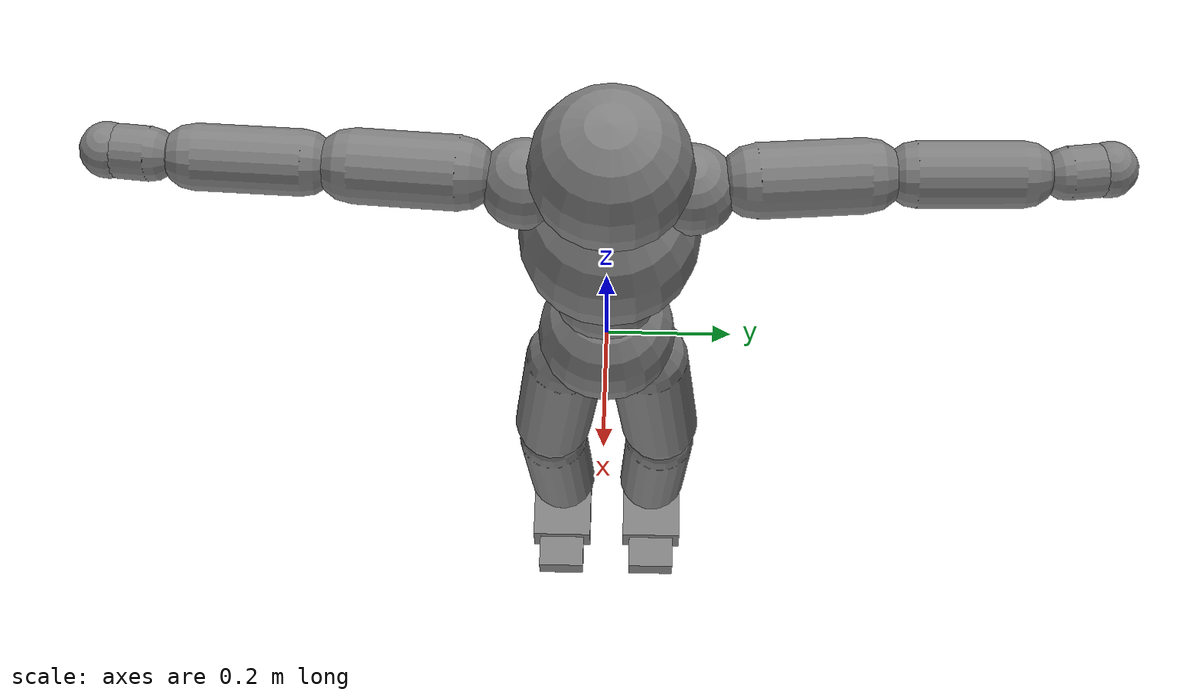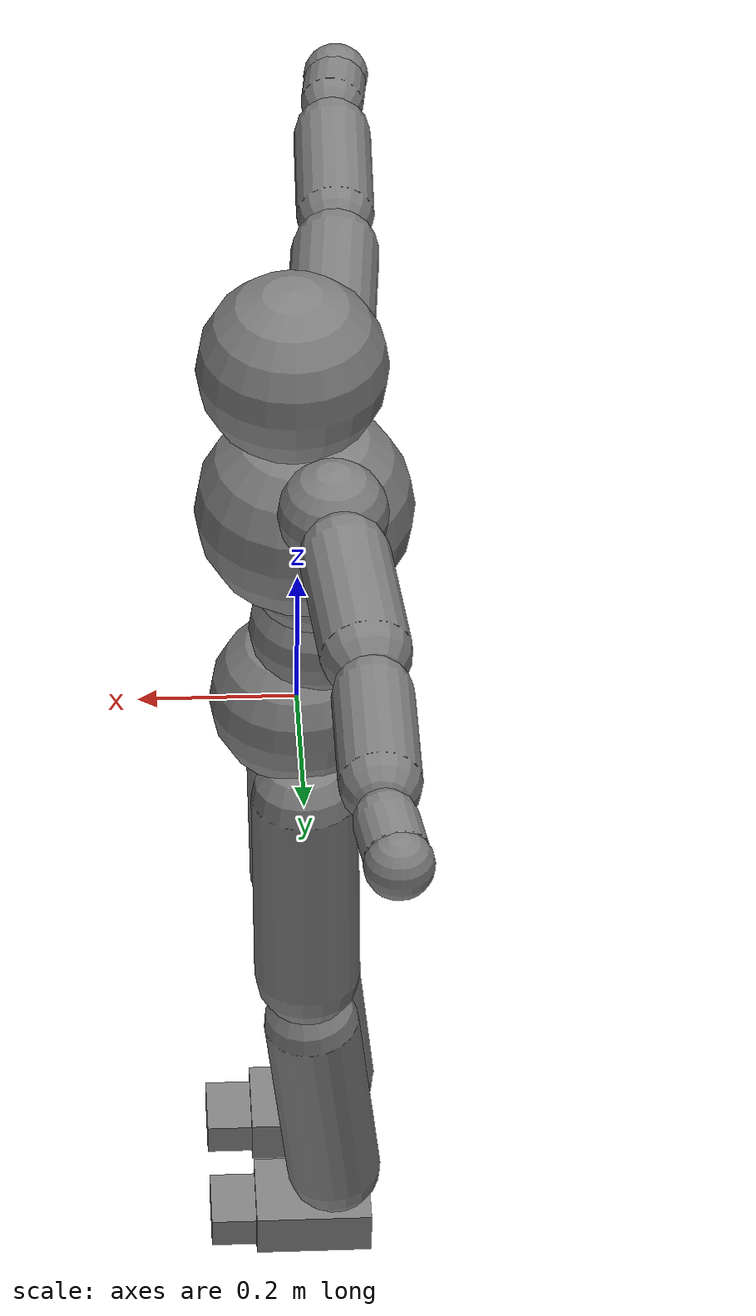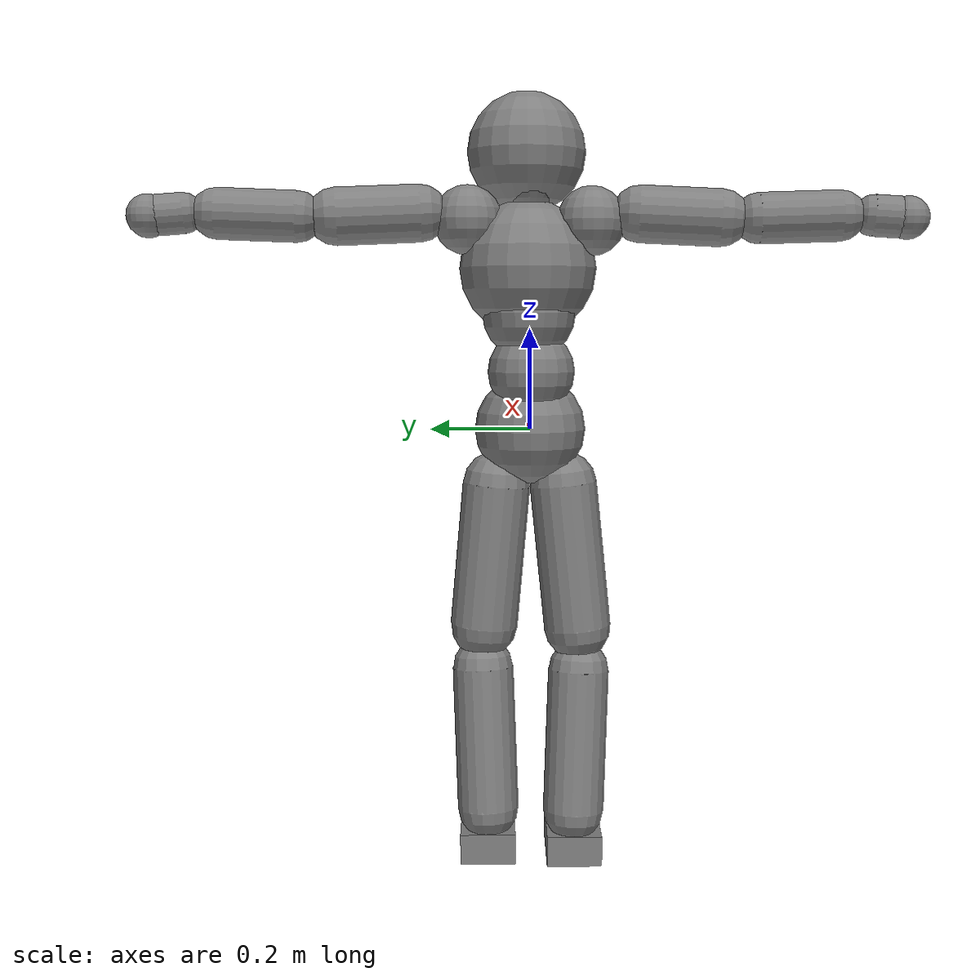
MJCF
<mujoco model="smpl">
  <compiler angle="radian" />
  <default>
    <motor ctrlrange="-1 1" ctrllimited="true" />
    <geom condim="1" friction="1.0 0.05 0.05" solimp=".9 .99 .003" solref=".015 1" />
    <joint limited="true" solimplimit="0 .99 .01" />
    <site size=".04" group="3" />
    <default class="force-torque">
      <site type="box" size=".01 .01 .02" rgba="1 0 0 1" />
    </default>
    <default class="touch">
      <site type="capsule" rgba="0 0 1 .3" />
    </default>
  </default>
  <worldbody>
    <body name="Pelvis" pos="0.000000 0.000000 0.000000">
      <freejoint name="Pelvis" />
      <geom type="sphere" contype="1" conaffinity="1" density="1061.766755" size="0.111150" pos="0.000000 0.000000 0.000000" />
      <body name="L_Hip" pos="-0.006460 0.066025 -0.086830">
        <joint name="L_Hip_x" type="hinge" pos="0 0 0" axis="1 0 0" actuatorfrcrange="-300 300" stiffness="500" damping="50" armature="0.02" range="-0.5236 1.5708" />
        <joint name="L_Hip_y" type="hinge" pos="0 0 0" axis="0 1 0" actuatorfrcrange="-300 300" stiffness="500" damping="50" armature="0.02" range="-2.4435 1.0472" />
        <joint name="L_Hip_z" type="hinge" pos="0 0 0" axis="0 0 1" actuatorfrcrange="-300 300" stiffness="500" damping="50" armature="0.02" range="-0.6109 1.0472" />
        <geom type="capsule" contype="1" conaffinity="1" density="978.361309" fromto="-0.000299 0.002281 -0.024951 -0.003762 0.028675 -0.313667" size="0.067925" />
        <body name="L_Knee" pos="-0.004275 0.032585 -0.356440">
          <joint name="L_Knee_x" type="hinge" pos="0 0 0" axis="1 0 0" actuatorfrcrange="-200 200" stiffness="500" damping="50" armature="0.02" range="-0.5236 0.5236" />
          <joint name="L_Knee_y" type="hinge" pos="0 0 0" axis="0 1 0" actuatorfrcrange="-200 200" stiffness="500" damping="50" armature="0.02" range="0 2.7925" />
          <joint name="L_Knee_z" type="hinge" pos="0 0 0" axis="0 0 1" actuatorfrcrange="-200 200" stiffness="500" damping="50" armature="0.02" range="-0.5236 0.5236" />
          <geom type="capsule" contype="1" conaffinity="1" density="818.574149" fromto="-0.004982 -0.001550 -0.045372 -0.036533 -0.011370 -0.332728" size="0.061750" />
          <body name="L_Ankle" pos="-0.041515 -0.012920 -0.378100">
            <joint name="L_Ankle_x" type="hinge" pos="0 0 0" axis="1 0 0" actuatorfrcrange="-100 100" stiffness="400" damping="40" armature="0.02" range="-0.5236 0.5236" />
            <joint name="L_Ankle_y" type="hinge" pos="0 0 0" axis="0 1 0" actuatorfrcrange="-100 100" stiffness="400" damping="40" armature="0.02" range="-0.9599 0.9599" />
            <joint name="L_Ankle_z" type="hinge" pos="0 0 0" axis="0 0 1" actuatorfrcrange="-100 100" stiffness="400" damping="40" armature="0.02" range="-0.6981 0.6981" />
            <geom type="box" contype="1" conaffinity="1" density="690.148391" pos="0.032870 0.002280 -0.026505" size="0.076000 0.055575 0.030875" quat="1.0000 0.0000 0.0000 0.0000" />
            <body name="L_Toe" pos="0.113335 0.011780 -0.024510">
              <joint name="L_Toe_x" type="hinge" pos="0 0 0" axis="1 0 0" actuatorfrcrange="-75 75" stiffness="200" damping="20" armature="0.02" range="-0.5236 0.5236" />
              <joint name="L_Toe_y" type="hinge" pos="0 0 0" axis="0 1 0" actuatorfrcrange="-75 75" stiffness="200" damping="20" armature="0.02" range="-1.0472 1.0472" />
              <joint name="L_Toe_z" type="hinge" pos="0 0 0" axis="0 0 1" actuatorfrcrange="-75 75" stiffness="200" damping="20" armature="0.02" range="-0.5236 0.5236" />
              <geom type="box" contype="1" conaffinity="1" density="690.148391" pos="0.023940 -0.009500 -0.007600" size="0.030875 0.042750 0.022230" quat="1.0000 0.0000 0.0000 0.0000" />
            </body>
          </body>
        </body>
      </body>
      <body name="R_Hip" pos="-0.004085 -0.064315 -0.085975">
        <joint name="R_Hip_x" type="hinge" pos="0 0 0" axis="1 0 0" actuatorfrcrange="-300 300" stiffness="500" damping="50" armature="0.02" range="-1.5708 0.5236" />
        <joint name="R_Hip_y" type="hinge" pos="0 0 0" axis="0 1 0" actuatorfrcrange="-300 300" stiffness="500" damping="50" armature="0.02" range="-2.4435 1.0472" />
        <joint name="R_Hip_z" type="hinge" pos="0 0 0" axis="0 0 1" actuatorfrcrange="-300 300" stiffness="500" damping="50" armature="0.02" range="-1.0472 0.6109" />
        <geom type="capsule" contype="1" conaffinity="1" density="979.246956" fromto="-0.000592 -0.002547 -0.025443 -0.007440 -0.032019 -0.319854" size="0.067925" />
        <body name="R_Knee" pos="-0.008455 -0.036385 -0.363470">
          <joint name="R_Knee_x" type="hinge" pos="0 0 0" axis="1 0 0" actuatorfrcrange="-200 200" stiffness="500" damping="50" armature="0.02" range="-0.5236 0.5236" />
          <joint name="R_Knee_y" type="hinge" pos="0 0 0" axis="0 1 0" actuatorfrcrange="-200 200" stiffness="500" damping="50" armature="0.02" range="0 2.7925" />
          <joint name="R_Knee_z" type="hinge" pos="0 0 0" axis="0 0 1" actuatorfrcrange="-200 200" stiffness="500" damping="50" armature="0.02" range="-0.5236 0.5236" />
          <geom type="capsule" contype="1" conaffinity="1" density="818.602236" fromto="-0.004822 0.001801 -0.045418 -0.035363 0.013209 -0.333062" size="0.061750" />
          <body name="R_Ankle" pos="-0.040185 0.015010 -0.378480">
            <joint name="R_Ankle_x" type="hinge" pos="0 0 0" axis="1 0 0" actuatorfrcrange="-100 100" stiffness="400" damping="40" armature="0.02" range="-0.5236 0.5236" />
            <joint name="R_Ankle_y" type="hinge" pos="0 0 0" axis="0 1 0" actuatorfrcrange="-100 100" stiffness="400" damping="40" armature="0.02" range="-0.9599 0.9599" />
            <joint name="R_Ankle_z" type="hinge" pos="0 0 0" axis="0 0 1" actuatorfrcrange="-100 100" stiffness="400" damping="40" armature="0.02" range="-0.6981 0.6981" />
            <geom type="box" contype="1" conaffinity="1" density="690.148391" pos="0.032870 -0.002280 -0.026505" size="0.076000 0.055575 0.030875" quat="1.0000 0.0000 0.0000 0.0000" />
            <body name="R_Toe" pos="0.113335 -0.011780 -0.024510">
              <joint name="R_Toe_x" type="hinge" pos="0 0 0" axis="1 0 0" actuatorfrcrange="-75 75" stiffness="200" damping="20" armature="0.02" range="-0.5236 0.5236" />
              <joint name="R_Toe_y" type="hinge" pos="0 0 0" axis="0 1 0" actuatorfrcrange="-75 75" stiffness="200" damping="20" armature="0.02" range="-1.0472 1.0472" />
              <joint name="R_Toe_z" type="hinge" pos="0 0 0" axis="0 0 1" actuatorfrcrange="-75 75" stiffness="200" damping="20" armature="0.02" range="-0.5236 0.5236" />
              <geom type="box" contype="1" conaffinity="1" density="690.148391" pos="0.023940 0.009500 -0.007600" size="0.030875 0.042750 0.022230" quat="1.0000 0.0000 0.0000 0.0000" />
            </body>
          </body>
        </body>
      </body>
      <body name="Torso" pos="-0.025365 -0.002375 0.103550">
        <joint name="Torso_x" type="hinge" pos="0 0 0" axis="1 0 0" actuatorfrcrange="-300 300" stiffness="1000" damping="100" armature="0.02" range="-1.0472 1.0472" />
        <joint name="Torso_y" type="hinge" pos="0 0 0" axis="0 1 0" actuatorfrcrange="-300 300" stiffness="1000" damping="100" armature="0.02" range="-1.0472 1.5708" />
        <joint name="Torso_z" type="hinge" pos="0 0 0" axis="0 0 1" actuatorfrcrange="-300 300" stiffness="1000" damping="100" armature="0.02" range="-0.8727 0.8727" />
        <geom type="sphere" contype="1" conaffinity="1" density="1061.766755" size="0.086450" pos="0.000104 0.000522 0.012844" />
        <body name="Spine" pos="0.001045 0.005225 0.128440">
          <joint name="Spine_x" type="hinge" pos="0 0 0" axis="1 0 0" actuatorfrcrange="-200 200" stiffness="1000" damping="100" armature="0.02" range="-1.0472 1.0472" />
          <joint name="Spine_y" type="hinge" pos="0 0 0" axis="0 1 0" actuatorfrcrange="-200 200" stiffness="1000" damping="100" armature="0.02" range="-1.0472 1.5708" />
          <joint name="Spine_z" type="hinge" pos="0 0 0" axis="0 0 1" actuatorfrcrange="-200 200" stiffness="1000" damping="100" armature="0.02" range="-0.8727 0.8727" />
          <geom type="sphere" contype="1" conaffinity="1" density="1061.766755" size="0.092625" pos="0.000000 0.000000 0.000000" />
          <body name="Chest" pos="0.024130 0.001425 0.050255">
            <joint name="Chest_x" type="hinge" pos="0 0 0" axis="1 0 0" actuatorfrcrange="-150 150" stiffness="1000" damping="100" armature="0.02" range="-1.0472 1.0472" />
            <joint name="Chest_y" type="hinge" pos="0 0 0" axis="0 1 0" actuatorfrcrange="-150 150" stiffness="1000" damping="100" armature="0.02" range="-1.0472 1.5708" />
            <joint name="Chest_z" type="hinge" pos="0 0 0" axis="0 0 1" actuatorfrcrange="-150 150" stiffness="1000" damping="100" armature="0.02" range="-0.8727 0.8727" />
            <geom type="sphere" contype="1" conaffinity="1" density="1061.766755" size="0.135850" pos="-0.007600 0.000000 0.038000" />
            <body name="Neck" pos="-0.040755 -0.002660 0.203205">
              <joint name="Neck_x" type="hinge" pos="0 0 0" axis="1 0 0" actuatorfrcrange="-75 75" stiffness="500" damping="50" armature="0.02" range="-0.8727 0.8727" />
              <joint name="Neck_y" type="hinge" pos="0 0 0" axis="0 1 0" actuatorfrcrange="-75 75" stiffness="500" damping="50" armature="0.02" range="-0.6981 1.0472" />
              <joint name="Neck_z" type="hinge" pos="0 0 0" axis="0 0 1" actuatorfrcrange="-75 75" stiffness="500" damping="50" armature="0.02" range="-0.7854 0.7854" />
              <geom type="sphere" contype="1" conaffinity="1" density="530.883377" size="0.055575" pos="0.019000 0.000000 0.000000" />
              <body name="Head" pos="0.048735 0.004940 0.061750">
                <joint name="Head_x" type="hinge" pos="0 0 0" axis="1 0 0" actuatorfrcrange="-25 25" stiffness="200" damping="20" armature="0.02" range="-0.8727 0.8727" />
                <joint name="Head_y" type="hinge" pos="0 0 0" axis="0 1 0" actuatorfrcrange="-25 25" stiffness="200" damping="20" armature="0.02" range="-0.6981 1.0472" />
                <joint name="Head_z" type="hinge" pos="0 0 0" axis="0 0 1" actuatorfrcrange="-25 25" stiffness="200" damping="20" armature="0.02" range="-0.7854 0.7854" />
                <geom type="sphere" contype="1" conaffinity="1" density="530.883377" size="0.117325" pos="0.000000 0.000000 0.000000" />
              </body>
            </body>
            <body name="L_Thorax" pos="-0.032395 0.074860 0.115615">
              <joint name="L_Thorax_x" type="hinge" pos="0 0 0" axis="1 0 0" actuatorfrcrange="-200 200" stiffness="500" damping="50" armature="0.02" range="-0.6981 0.5236" />
              <joint name="L_Thorax_y" type="hinge" pos="0 0 0" axis="0 1 0" actuatorfrcrange="-200 200" stiffness="500" damping="50" armature="0.02" range="-0.5236 0.5236" />
              <joint name="L_Thorax_z" type="hinge" pos="0 0 0" axis="0 0 1" actuatorfrcrange="-200 200" stiffness="500" damping="50" armature="0.02" range="-0.5236 0.5236" />
              <geom type="sphere" contype="1" conaffinity="1" density="530.883377" size="0.067925" pos="-0.004227 0.043225 0.014487" />
              <body name="L_Shoulder" pos="-0.008455 0.086450 0.028975">
                <joint name="L_Shoulder_x" type="hinge" pos="0 0 0" axis="1 0 0" actuatorfrcrange="-150 150" stiffness="400" damping="40" armature="0.02" range="-2.3562 1.5708" />
                <joint name="L_Shoulder_y" type="hinge" pos="0 0 0" axis="0 1 0" actuatorfrcrange="-150 150" stiffness="400" damping="40" armature="0.02" range="-1.5708 1.5708" />
                <joint name="L_Shoulder_z" type="hinge" pos="0 0 0" axis="0 0 1" actuatorfrcrange="-150 150" stiffness="400" damping="40" armature="0.02" range="-2.7925 1.0472" />
                <geom type="capsule" contype="1" conaffinity="1" density="640.034339" fromto="-0.005225 0.049324 -0.002432 -0.022206 0.209627 -0.010336" size="0.055575" />
                <body name="L_Elbow" pos="-0.026125 0.246620 -0.012160">
                  <joint name="L_Elbow_x" type="hinge" pos="0 0 0" axis="1 0 0" actuatorfrcrange="-100 100" stiffness="300" damping="30" armature="0.02" range="-0.5236 0.5236" />
                  <joint name="L_Elbow_y" type="hinge" pos="0 0 0" axis="0 1 0" actuatorfrcrange="-100 100" stiffness="300" damping="30" armature="0.02" range="-0.5236 0.5236" />
                  <joint name="L_Elbow_z" type="hinge" pos="0 0 0" axis="0 0 1" actuatorfrcrange="-100 100" stiffness="300" damping="30" armature="0.02" range="-2.7925 0" />
                  <geom type="capsule" contype="1" conaffinity="1" density="642.441012" fromto="-0.000171 0.035511 0.001283 -0.000855 0.189430 0.006840" size="0.049400" />
                  <body name="L_Wrist" pos="-0.001140 0.236740 0.008550">
                    <joint name="L_Wrist_x" type="hinge" pos="0 0 0" axis="1 0 0" actuatorfrcrange="-75 75" stiffness="200" damping="20" armature="0.02" range="-1.5708 1.5708" />
                    <joint name="L_Wrist_y" type="hinge" pos="0 0 0" axis="0 1 0" actuatorfrcrange="-75 75" stiffness="200" damping="20" armature="0.02" range="-1.5708 1.5708" />
                    <joint name="L_Wrist_z" type="hinge" pos="0 0 0" axis="0 0 1" actuatorfrcrange="-75 75" stiffness="200" damping="20" armature="0.02" range="-1.0472 1.0472" />
                    <geom type="capsule" contype="1" conaffinity="1" density="607.759021" fromto="-0.002850 0.015960 -0.001520 -0.011400 0.063840 -0.006175" size="0.039273" />
                    <body name="L_Hand" pos="-0.014155 0.079800 -0.007790">
                      <joint name="L_Hand_x" type="hinge" pos="0 0 0" axis="1 0 0" actuatorfrcrange="-50 50" stiffness="100" damping="10" armature="0.02" range="-1.5708 1.5708" />
                      <joint name="L_Hand_y" type="hinge" pos="0 0 0" axis="0 1 0" actuatorfrcrange="-50 50" stiffness="100" damping="10" armature="0.02" range="-1.5708 1.5708" />
                      <joint name="L_Hand_z" type="hinge" pos="0 0 0" axis="0 0 1" actuatorfrcrange="-50 50" stiffness="100" damping="10" armature="0.02" range="-1.5708 1.5708" />
                      <geom type="sphere" contype="1" conaffinity="1" density="530.883377" size="0.041620" pos="0.000000 0.000000 0.000000" />
                    </body>
                  </body>
                </body>
              </body>
            </body>
            <body name="R_Thorax" pos="-0.036670 -0.077710 0.112860">
              <joint name="R_Thorax_x" type="hinge" pos="0 0 0" axis="1 0 0" actuatorfrcrange="-200 200" stiffness="500" damping="50" armature="0.02" range="-0.5236 0.6981" />
              <joint name="R_Thorax_y" type="hinge" pos="0 0 0" axis="0 1 0" actuatorfrcrange="-200 200" stiffness="500" damping="50" armature="0.02" range="-0.5236 0.5236" />
              <joint name="R_Thorax_z" type="hinge" pos="0 0 0" axis="0 0 1" actuatorfrcrange="-200 200" stiffness="500" damping="50" armature="0.02" range="-0.5236 0.5236" />
              <geom type="sphere" contype="1" conaffinity="1" density="530.883377" size="0.067925" pos="-0.004322 -0.045600 0.015485" />
              <body name="R_Shoulder" pos="-0.008645 -0.091200 0.030970">
                <joint name="R_Shoulder_x" type="hinge" pos="0 0 0" axis="1 0 0" actuatorfrcrange="-150 150" stiffness="400" damping="40" armature="0.02" range="-1.5708 2.3562" />
                <joint name="R_Shoulder_y" type="hinge" pos="0 0 0" axis="0 1 0" actuatorfrcrange="-150 150" stiffness="400" damping="40" armature="0.02" range="-1.5708 1.5708" />
                <joint name="R_Shoulder_z" type="hinge" pos="0 0 0" axis="0 0 1" actuatorfrcrange="-150 150" stiffness="400" damping="40" armature="0.02" range="-1.0472 2.7925" />
                <geom type="capsule" contype="1" conaffinity="1" density="639.176533" fromto="-0.004066 -0.048203 -0.002527 -0.017281 -0.204863 -0.010740" size="0.055575" />
                <body name="R_Elbow" pos="-0.020330 -0.241015 -0.012635">
                  <joint name="R_Elbow_x" type="hinge" pos="0 0 0" axis="1 0 0" actuatorfrcrange="-100 100" stiffness="300" damping="30" armature="0.02" range="-0.5236 0.5236" />
                  <joint name="R_Elbow_y" type="hinge" pos="0 0 0" axis="0 1 0" actuatorfrcrange="-100 100" stiffness="300" damping="30" armature="0.02" range="-0.5236 0.5236" />
                  <joint name="R_Elbow_z" type="hinge" pos="0 0 0" axis="0 0 1" actuatorfrcrange="-100 100" stiffness="300" damping="30" armature="0.02" range="0 2.7925" />
                  <geom type="capsule" contype="1" conaffinity="1" density="643.238545" fromto="-0.000798 -0.036380 0.001112 -0.004256 -0.194028 0.005928" size="0.049400" />
                  <body name="R_Wrist" pos="-0.005320 -0.242535 0.007410">
                    <joint name="R_Wrist_x" type="hinge" pos="0 0 0" axis="1 0 0" actuatorfrcrange="-75 75" stiffness="200" damping="20" armature="0.02" range="-1.5708 1.5708" />
                    <joint name="R_Wrist_y" type="hinge" pos="0 0 0" axis="0 1 0" actuatorfrcrange="-75 75" stiffness="200" damping="20" armature="0.02" range="-1.5708 1.5708" />
                    <joint name="R_Wrist_z" type="hinge" pos="0 0 0" axis="0 0 1" actuatorfrcrange="-75 75" stiffness="200" damping="20" armature="0.02" range="-1.0472 1.0472" />
                    <geom type="capsule" contype="1" conaffinity="1" density="606.678075" fromto="-0.001995 -0.016055 -0.001140 -0.007885 -0.064315 -0.004655" size="0.040261" />
                    <body name="R_Hand" pos="-0.009785 -0.080370 -0.005795">
                      <joint name="R_Hand_x" type="hinge" pos="0 0 0" axis="1 0 0" actuatorfrcrange="-50 50" stiffness="100" damping="10" armature="0.02" range="-1.5708 1.5708" />
                      <joint name="R_Hand_y" type="hinge" pos="0 0 0" axis="0 1 0" actuatorfrcrange="-50 50" stiffness="100" damping="10" armature="0.02" range="-1.5708 1.5708" />
                      <joint name="R_Hand_z" type="hinge" pos="0 0 0" axis="0 0 1" actuatorfrcrange="-50 50" stiffness="100" damping="10" armature="0.02" range="-1.5708 1.5708" />
                      <geom type="sphere" contype="1" conaffinity="1" density="530.883377" size="0.041990" pos="0.000000 0.000000 0.000000" />
                    </body>
                  </body>
                </body>
              </body>
            </body>
          </body>
        </body>
      </body>
    </body>
  </worldbody>
  <actuator>
    <motor name="L_Hip_x" joint="L_Hip_x" gear="300" />
    <motor name="L_Hip_y" joint="L_Hip_y" gear="300" />
    <motor name="L_Hip_z" joint="L_Hip_z" gear="300" />
    <motor name="L_Knee_x" joint="L_Knee_x" gear="200" />
    <motor name="L_Knee_y" joint="L_Knee_y" gear="200" />
    <motor name="L_Knee_z" joint="L_Knee_z" gear="200" />
    <motor name="L_Ankle_x" joint="L_Ankle_x" gear="100" />
    <motor name="L_Ankle_y" joint="L_Ankle_y" gear="100" />
    <motor name="L_Ankle_z" joint="L_Ankle_z" gear="100" />
    <motor name="L_Toe_x" joint="L_Toe_x" gear="75" />
    <motor name="L_Toe_y" joint="L_Toe_y" gear="75" />
    <motor name="L_Toe_z" joint="L_Toe_z" gear="75" />
    <motor name="R_Hip_x" joint="R_Hip_x" gear="300" />
    <motor name="R_Hip_y" joint="R_Hip_y" gear="300" />
    <motor name="R_Hip_z" joint="R_Hip_z" gear="300" />
    <motor name="R_Knee_x" joint="R_Knee_x" gear="200" />
    <motor name="R_Knee_y" joint="R_Knee_y" gear="200" />
    <motor name="R_Knee_z" joint="R_Knee_z" gear="200" />
    <motor name="R_Ankle_x" joint="R_Ankle_x" gear="100" />
    <motor name="R_Ankle_y" joint="R_Ankle_y" gear="100" />
    <motor name="R_Ankle_z" joint="R_Ankle_z" gear="100" />
    <motor name="R_Toe_x" joint="R_Toe_x" gear="75" />
    <motor name="R_Toe_y" joint="R_Toe_y" gear="75" />
    <motor name="R_Toe_z" joint="R_Toe_z" gear="75" />
    <motor name="Torso_x" joint="Torso_x" gear="300" />
    <motor name="Torso_y" joint="Torso_y" gear="300" />
    <motor name="Torso_z" joint="Torso_z" gear="300" />
    <motor name="Spine_x" joint="Spine_x" gear="200" />
    <motor name="Spine_y" joint="Spine_y" gear="200" />
    <motor name="Spine_z" joint="Spine_z" gear="200" />
    <motor name="Chest_x" joint="Chest_x" gear="150" />
    <motor name="Chest_y" joint="Chest_y" gear="150" />
    <motor name="Chest_z" joint="Chest_z" gear="150" />
    <motor name="Neck_x" joint="Neck_x" gear="75" />
    <motor name="Neck_y" joint="Neck_y" gear="75" />
    <motor name="Neck_z" joint="Neck_z" gear="75" />
    <motor name="Head_x" joint="Head_x" gear="25" />
    <motor name="Head_y" joint="Head_y" gear="25" />
    <motor name="Head_z" joint="Head_z" gear="25" />
    <motor name="L_Thorax_x" joint="L_Thorax_x" gear="200" />
    <motor name="L_Thorax_y" joint="L_Thorax_y" gear="200" />
    <motor name="L_Thorax_z" joint="L_Thorax_z" gear="200" />
    <motor name="L_Shoulder_x" joint="L_Shoulder_x" gear="150" />
    <motor name="L_Shoulder_y" joint="L_Shoulder_y" gear="150" />
    <motor name="L_Shoulder_z" joint="L_Shoulder_z" gear="150" />
    <motor name="L_Elbow_x" joint="L_Elbow_x" gear="100" />
    <motor name="L_Elbow_y" joint="L_Elbow_y" gear="100" />
    <motor name="L_Elbow_z" joint="L_Elbow_z" gear="100" />
    <motor name="L_Wrist_x" joint="L_Wrist_x" gear="75" />
    <motor name="L_Wrist_y" joint="L_Wrist_y" gear="75" />
    <motor name="L_Wrist_z" joint="L_Wrist_z" gear="75" />
    <motor name="L_Hand_x" joint="L_Hand_x" gear="50" />
    <motor name="L_Hand_y" joint="L_Hand_y" gear="50" />
    <motor name="L_Hand_z" joint="L_Hand_z" gear="50" />
    <motor name="R_Thorax_x" joint="R_Thorax_x" gear="200" />
    <motor name="R_Thorax_y" joint="R_Thorax_y" gear="200" />
    <motor name="R_Thorax_z" joint="R_Thorax_z" gear="200" />
    <motor name="R_Shoulder_x" joint="R_Shoulder_x" gear="150" />
    <motor name="R_Shoulder_y" joint="R_Shoulder_y" gear="150" />
    <motor name="R_Shoulder_z" joint="R_Shoulder_z" gear="150" />
    <motor name="R_Elbow_x" joint="R_Elbow_x" gear="100" />
    <motor name="R_Elbow_y" joint="R_Elbow_y" gear="100" />
    <motor name="R_Elbow_z" joint="R_Elbow_z" gear="100" />
    <motor name="R_Wrist_x" joint="R_Wrist_x" gear="75" />
    <motor name="R_Wrist_y" joint="R_Wrist_y" gear="75" />
    <motor name="R_Wrist_z" joint="R_Wrist_z" gear="75" />
    <motor name="R_Hand_x" joint="R_Hand_x" gear="50" />
    <motor name="R_Hand_y" joint="R_Hand_y" gear="50" />
    <motor name="R_Hand_z" joint="R_Hand_z" gear="50" />
  </actuator>
</mujoco>
